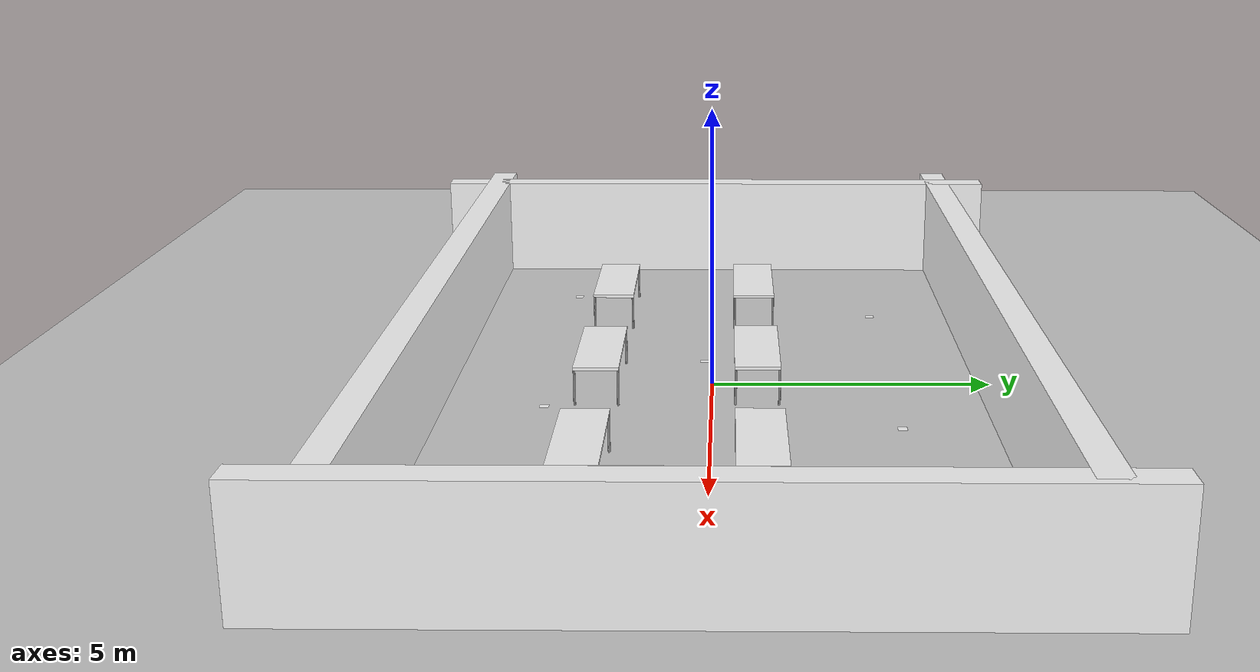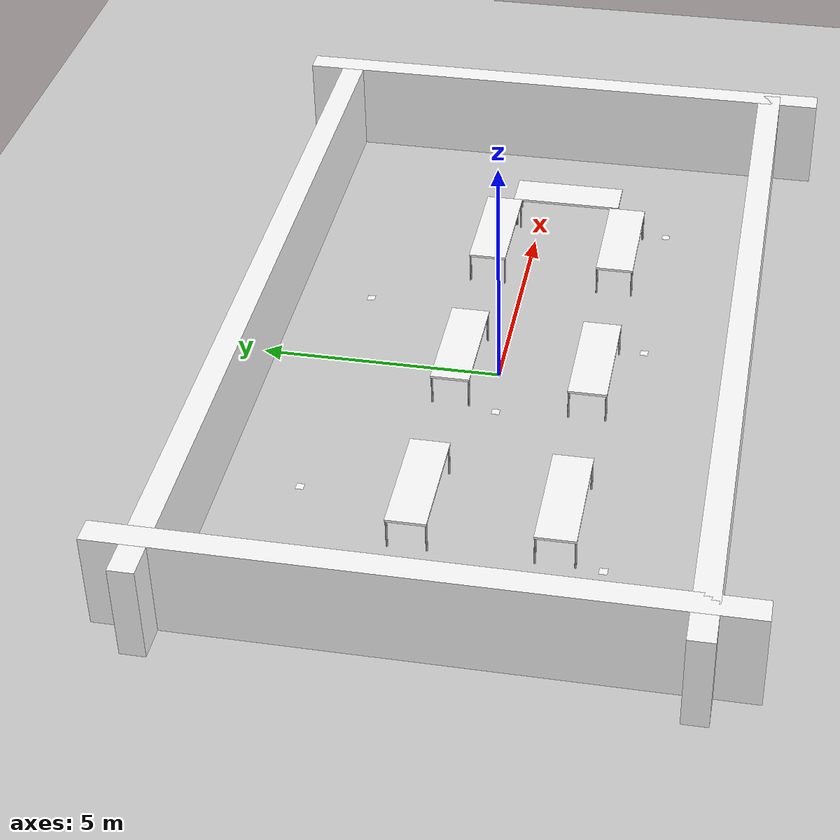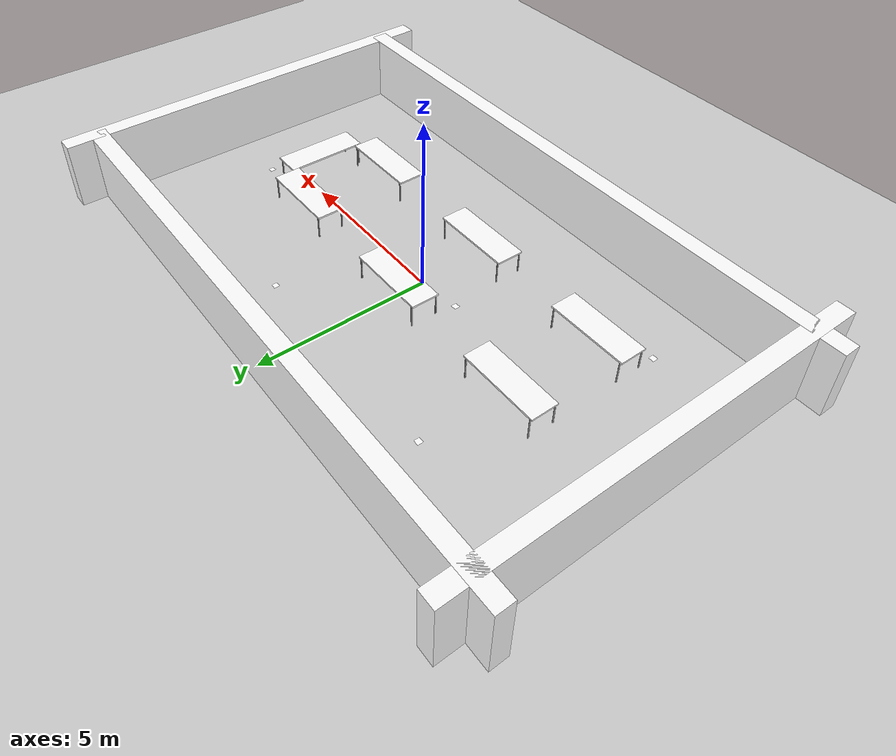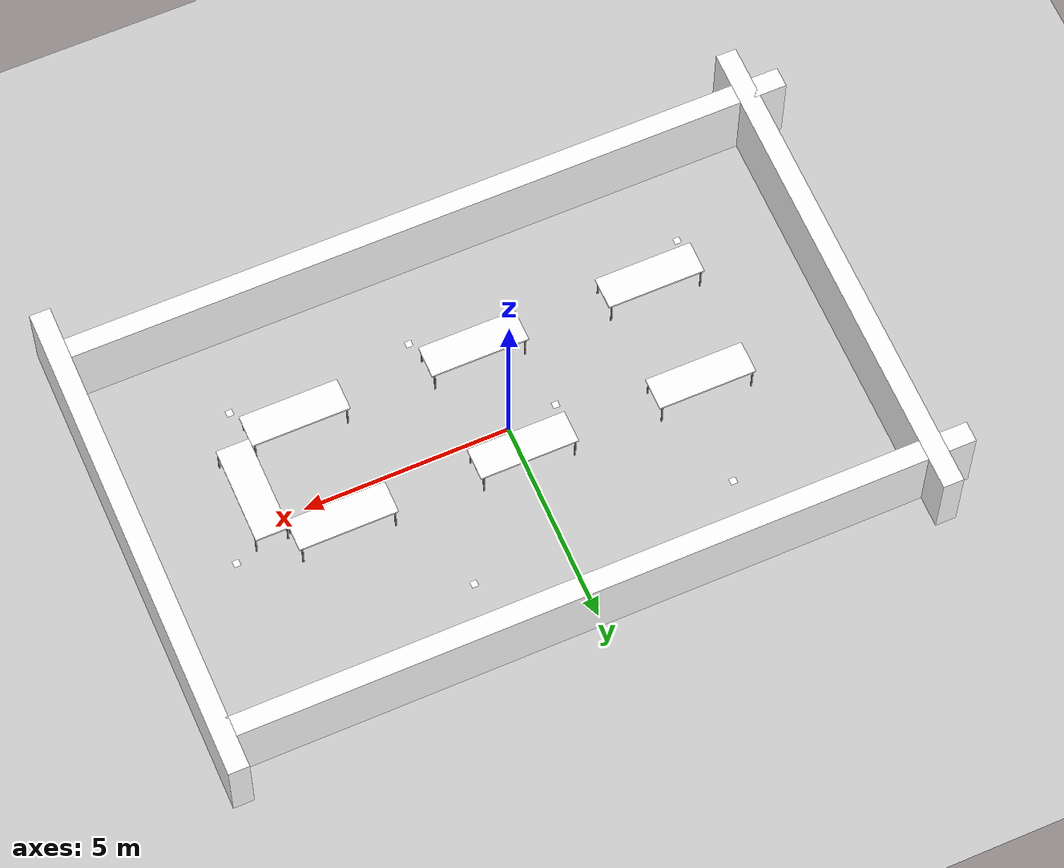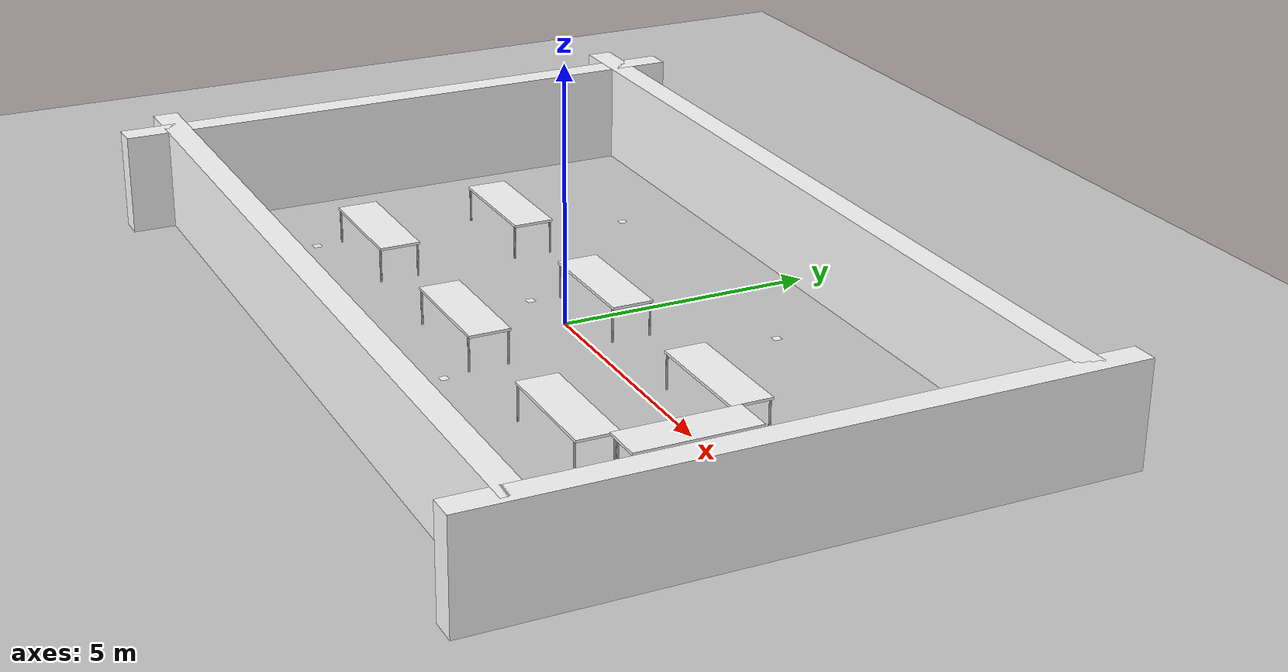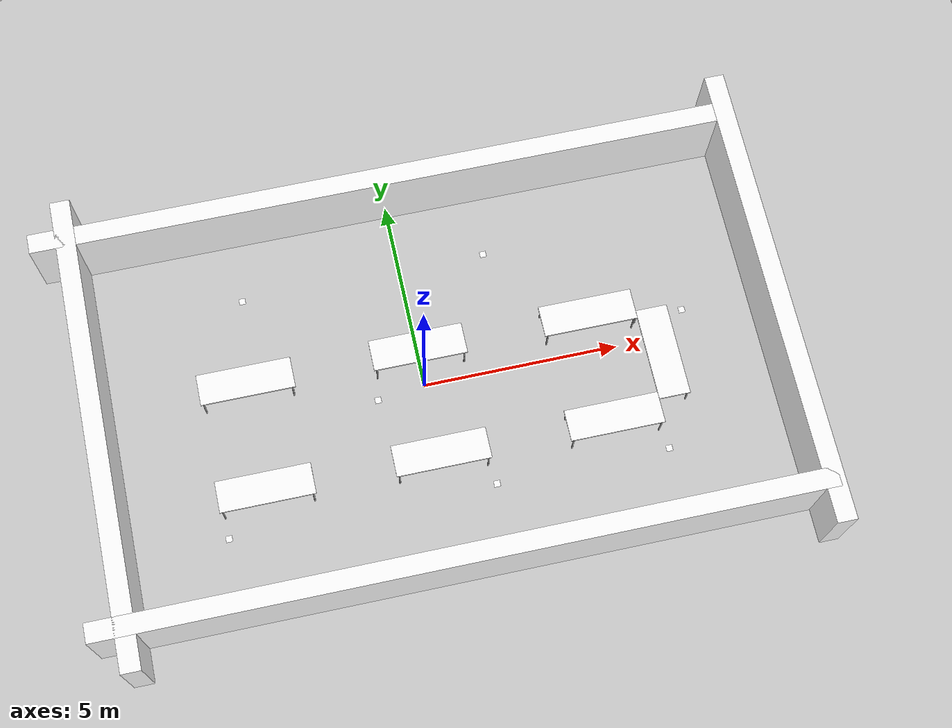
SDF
<sdf version="1.6">
 <world name="default">
  <include><uri>https://fuel.gazebosim.org/1.0/openrobotics/models/sun</uri></include>
  <include><uri>https://fuel.gazebosim.org/1.0/openrobotics/models/ground%20plane</uri></include>
  <include><uri>model://table</uri><pose>0 -2 0 0 0 0</pose><name>table1</name></include>
  <include><uri>model://table</uri><pose>4.39 -2 0 0 0 0</pose><name>table2</name></include>
  <include><uri>model://table</uri><name>table3</name><pose>4.39 0.8 0.02 0 0 0</pose></include>
  <include><uri>model://table</uri><name>table4</name><pose>0 0.8 0.02 0 0 0</pose></include>
  <include><uri>model://table</uri><name>table5</name><pose>-4.39 0.8 0.02 0 0 0</pose></include>
  <include><uri>model://table</uri><name>table6</name><pose>-4.39 -2 0.02 0 0 0</pose></include>
  <include><uri>model://table</uri><name>table7</name><pose>5.985 -0.6 0.02 0 0 1.57</pose></include>
  <include>
   <uri>model://aruco_marker_20</uri>
   <name>aruco_marker_20</name>
   <pose>-5.52 -2.9 0.02 0 0 3.14</pose>
  </include>
  <include>
   <uri>model://aruco_marker_21</uri>
   <name>aruco_marker_21</name>
   <pose>1.23 -2.9 0.02 0 0 0</pose>
  </include>
  <include>
   <uri>model://aruco_marker_22</uri>
   <name>aruco_marker_22</name>
   <pose>2.23 3.2 0.02 0 0 0</pose>
  </include>
  <include>
   <uri>model://aruco_marker_23</uri>
   <name>aruco_marker_23</name>
   <pose>-1.23 -0.15 0.02 0 0 3.14</pose>
  </include>
  <include>
   <uri>model://aruco_marker_24</uri>
   <name>aruco_marker_24</name>
   <pose>-4.13 3.2 0.02 0 0 3.14</pose>
  </include>
  <include>
   <uri>model://aruco_marker_25</uri>
   <name>aruco_marker_25</name>
   <pose>6.9 0.63 0.02 0 0 1.57079633</pose>
  </include>
  <include>
   <uri>model://aruco_marker_26</uri>
   <name>aruco_marker_26</name>
   <pose>5.65 -2.9 0.02 0 0 0</pose>
  </include>
  <model name="wall1">
   <static>true</static>
   <pose>8.885 0 1 0 0 1.57</pose>
   <link name="link">
    <visual name="visual">
     <geometry><box><size>12 0.5 2</size></box></geometry>
     <material><ambient>1 1 1 1</ambient><diffuse>1 1 1 1</diffuse></material>
    </visual>
    <collision name="collision"><geometry><box><size>12 0.5 2</size></box></geometry></collision>
   </link>
  </model>
  <model name="wall2">
   <static>true</static>
   <pose>-8.085 0 1 0 0 1.57</pose>
   <link name="link">
    <visual name="visual">
     <geometry><box><size>12 0.5 2</size></box></geometry>
     <material><ambient>1 1 1 1</ambient><diffuse>1 1 1 1</diffuse></material>
    </visual>
    <collision name="collision"><geometry><box><size>12 0.5 2</size></box></geometry></collision>
   </link>
  </model>
  <model name="wall3">
   <static>true</static>
   <pose>0 5 1 0 0 0</pose>
   <link name="link">
    <visual name="visual">
     <geometry><box><size>18 0.5 2</size></box></geometry>
     <material><ambient>1 1 1 1</ambient><diffuse>1 1 1 1</diffuse></material>
    </visual>
    <collision name="collision"><geometry><box><size>18 0.5 2</size></box></geometry></collision>
   </link>
  </model>
  <model name="wall4">
   <static>true</static>
   <pose>0 -4.9 1 0 0 0</pose>
   <link name="link">
    <visual name="visual">
     <geometry><box><size>18 0.5 2</size></box></geometry>
     <material><ambient>1 1 1 1</ambient><diffuse>1 1 1 1</diffuse></material>
    </visual>
    <collision name="collision"><geometry><box><size>18 0.5 2</size></box></geometry></collision>
   </link>
  </model>
  <plugin filename="gz-sim-physics-system" name="gz::sim::systems::Physics"/>
  <plugin filename="gz-sim-user-commands-system" name="gz::sim::systems::UserCommands"/>
  <plugin filename="gz-sim-scene-broadcaster-system" name="gz::sim::systems::SceneBroadcaster"/>
  <plugin filename="gz-sim-sensors-system" name="gz::sim::systems::Sensors"/>
 </world>
</sdf>

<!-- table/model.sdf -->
<sdf version="1.5">
  <model name="Table">
    <static>true</static>
    <link name="link">
      <collision name="surface">
        <pose>0 0 0.69 0 0 0</pose>
        <geometry>
          <box>
            <size>2.39 0.8 0.05</size>
          </box>
        </geometry>
        <surface>
          <friction>
            <ode>
              <mu>0.6</mu>
              <mu2>0.6</mu2>
            </ode>
          </friction>
        </surface>
      </collision>
      <visual name="visual1">
        <pose>0 0 0.69 0 0 0</pose>
        <geometry>
          <box>
            <size>2.39 0.8 0.05</size>
          </box>
        </geometry>
        <material>
          <ambient>1.0 1.0 1.0 1</ambient>
          <diffuse>1.0 1.0 1.0 1</diffuse>
          <!-- PBR for Ignition, material scripts for gazebo classic-->
          <pbr>
            <metal>
              <metalness>0.7</metalness>
              <roughness>0.18</roughness>
            </metal>
          </pbr>
        </material>
      </visual>
      <collision name="front_left_leg">
        <pose>1.12 0.38 0.345 0 0 0</pose>
        <geometry>
          <cylinder>
            <radius>0.02</radius>
            <length>0.69</length>
          </cylinder>
        </geometry>
      </collision>
      <visual name="front_left_leg">
        <pose>1.12 0.38 0.345 0 0 0</pose>
        <geometry>
          <cylinder>
            <radius>0.02</radius>
            <length>0.69</length>
          </cylinder>
        </geometry>
        <material>
          <diffuse>0.5 0.5 0.5</diffuse>
          <script>
            <uri>file://media/materials/scripts/gazebo.material</uri>
            <name>Gazebo/Grey</name>
          </script>
        </material>
      </visual>
      <collision name="front_right_leg">
        <pose>1.12 -0.38 0.345 0 0 0</pose>
        <geometry>
          <cylinder>
            <radius>0.02</radius>
            <length>0.69</length>
          </cylinder>
        </geometry>
      </collision>
      <visual name="front_right_leg">
        <pose>1.12 -0.38 0.345 0 0 0</pose>
        <geometry>
          <cylinder>
            <radius>0.02</radius>
            <length>0.69</length>
          </cylinder>
        </geometry>
        <material>
          <diffuse>0.5 0.5 0.5</diffuse>
          <script>
            <uri>file://media/materials/scripts/gazebo.material</uri>
            <name>Gazebo/Grey</name>
          </script>
        </material>
      </visual>
      <collision name="back_right_leg">
        <pose>-1.12 -0.38 0.345 0 0 0</pose>
        <geometry>
          <cylinder>
            <radius>0.02</radius>
            <length>0.69</length>
          </cylinder>
        </geometry>
      </collision>
      <visual name="back_right_leg">
        <pose>-1.12 -0.38 0.345 0 0 0</pose>
        <geometry>
          <cylinder>
            <radius>0.02</radius>
            <length>0.69</length>
          </cylinder>
        </geometry>
        <material>
          <diffuse>0.5 0.5 0.5</diffuse>
          <script>
            <uri>file://media/materials/scripts/gazebo.material</uri>
            <name>Gazebo/Grey</name>
          </script>
        </material>
      </visual>
      <collision name="back_left_leg">
        <pose>-1.12 0.38 0.345 0 0 0</pose>
        <geometry>
          <cylinder>
            <radius>0.02</radius>
            <length>0.69</length>
          </cylinder>
        </geometry>
      </collision>
      <visual name="back_left_leg">
        <pose>-1.12 0.38 0.345 0 0 0</pose>
        <geometry>
          <cylinder>
            <radius>0.02</radius>
            <length>0.69</length>
          </cylinder>
        </geometry>
        <material>
          <diffuse>0.5 0.5 0.5</diffuse>
          <script>
            <uri>file://media/materials/scripts/gazebo.material</uri>
            <name>Gazebo/Grey</name>
          </script>
        </material>
      </visual>
    </link>
  </model>
</sdf>

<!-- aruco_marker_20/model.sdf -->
<sdf version="1.6">
  <model name="aruco_marker_20">
    <static>true</static>

    <link name="marker_20_link">

      <visual name="marker_20_visual">
        <pose>0 0 0 0 0 0</pose>

        <geometry>
          <plane>
            <normal>0 0 1</normal>
            <size>0.162 0.162</size>
          </plane>
        </geometry>

        <material>
          <ambient>1 1 1 1</ambient>
          <diffuse>1 1 1 1</diffuse>
          <specular>0 0 0 1</specular>

          <pbr>
            <metal>
              <albedo_map>model://aruco_marker_20/textures/aruco_marker_20.png</albedo_map>
              <roughness>1.0</roughness>
              <metalness>0.0</metalness>
            </metal>
          </pbr>
        </material>

        <cast_shadows>false</cast_shadows>
      </visual>
    </link>
  </model>
</sdf>

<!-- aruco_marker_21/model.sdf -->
<sdf version="1.6">
  <model name="aruco_marker_21">
    <static>true</static>

    <link name="marker_21_link">

      <visual name="marker_21_visual">
        <pose>0 0 0 0 0 0</pose>

        <geometry>
          <plane>
            <normal>0 0 1</normal>
            <size>0.162 0.162</size>
          </plane>
        </geometry>

        <material>
          <ambient>1 1 1 1</ambient>
          <diffuse>1 1 1 1</diffuse>
          <specular>0 0 0 1</specular>

          <pbr>
            <metal>
              <albedo_map>model://aruco_marker_21/textures/aruco_marker_21.png</albedo_map>
              <roughness>1.0</roughness>
              <metalness>0.0</metalness>
            </metal>
          </pbr>
        </material>

        <cast_shadows>false</cast_shadows>
      </visual>
    </link>
  </model>
</sdf>

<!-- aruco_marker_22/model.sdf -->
<sdf version="1.6">
  <model name="aruco_marker_22">
    <static>true</static>

    <link name="marker_22_link">

      <visual name="marker_22_visual">
        <pose>0 0 0 0 0 0</pose>

        <geometry>
          <plane>
            <normal>0 0 1</normal>
            <size>0.162 0.162</size>
          </plane>
        </geometry>

        <material>
          <ambient>1 1 1 1</ambient>
          <diffuse>1 1 1 1</diffuse>
          <specular>0 0 0 1</specular>

          <pbr>
            <metal>
              <albedo_map>model://aruco_marker_22/textures/aruco_marker_22.png</albedo_map>
              <roughness>1.0</roughness>
              <metalness>0.0</metalness>
            </metal>
          </pbr>
        </material>

        <cast_shadows>false</cast_shadows>
      </visual>
    </link>
  </model>
</sdf>

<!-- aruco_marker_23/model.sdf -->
<sdf version="1.6">
  <model name="aruco_marker_23">
    <static>true</static>

    <link name="marker_23_link">

      <visual name="marker_23_visual">
        <pose>0 0 0 0 0 0</pose>

        <geometry>
          <plane>
            <normal>0 0 1</normal>
            <size>0.162 0.162</size>
          </plane>
        </geometry>

        <material>
          <ambient>1 1 1 1</ambient>
          <diffuse>1 1 1 1</diffuse>
          <specular>0 0 0 1</specular>

          <pbr>
            <metal>
              <albedo_map>model://aruco_marker_23/textures/aruco_marker_23.png</albedo_map>
              <roughness>1.0</roughness>
              <metalness>0.0</metalness>
            </metal>
          </pbr>
        </material>

        <cast_shadows>false</cast_shadows>
      </visual>
    </link>
  </model>
</sdf>

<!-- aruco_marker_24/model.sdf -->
<sdf version="1.6">
  <model name="aruco_marker_24">
    <static>true</static>

    <link name="marker_24_link">

      <visual name="marker_24_visual">
        <pose>0 0 0 0 0 0</pose>

        <geometry>
          <plane>
            <normal>0 0 1</normal>
            <size>0.162 0.162</size>
          </plane>
        </geometry>

        <material>
          <ambient>1 1 1 1</ambient>
          <diffuse>1 1 1 1</diffuse>
          <specular>0 0 0 1</specular>

          <pbr>
            <metal>
              <albedo_map>model://aruco_marker_24/textures/aruco_marker_24.png</albedo_map>
              <roughness>1.0</roughness>
              <metalness>0.0</metalness>
            </metal>
          </pbr>
        </material>

        <cast_shadows>false</cast_shadows>
      </visual>
    </link>
  </model>
</sdf>

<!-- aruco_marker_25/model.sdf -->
<sdf version="1.6">
  <model name="aruco_marker_25">
    <static>true</static>

    <link name="marker_25_link">

      <visual name="marker_25_visual">
        <pose>0 0 0 0 0 0</pose>

        <geometry>
          <plane>
            <normal>0 0 1</normal>
            <size>0.162 0.162</size>
          </plane>
        </geometry>

        <material>
          <ambient>1 1 1 1</ambient>
          <diffuse>1 1 1 1</diffuse>
          <specular>0 0 0 1</specular>

          <pbr>
            <metal>
              <albedo_map>model://aruco_marker_25/textures/aruco_marker_25.png</albedo_map>
              <roughness>1.0</roughness>
              <metalness>0.0</metalness>
            </metal>
          </pbr>
        </material>

        <cast_shadows>false</cast_shadows>
      </visual>
    </link>
  </model>
</sdf>

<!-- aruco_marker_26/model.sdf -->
<sdf version="1.6">
  <model name="aruco_marker_26">
    <static>true</static>

    <link name="marker_26_link">

      <visual name="marker_26_visual">
        <pose>0 0 0 0 0 0</pose>

        <geometry>
          <plane>
            <normal>0 0 1</normal>
            <size>0.162 0.162</size>
          </plane>
        </geometry>

        <material>
          <ambient>1 1 1 1</ambient>
          <diffuse>1 1 1 1</diffuse>
          <specular>0 0 0 1</specular>

          <pbr>
            <metal>
              <albedo_map>model://aruco_marker_26/textures/aruco_marker_26.png</albedo_map>
              <roughness>1.0</roughness>
              <metalness>0.0</metalness>
            </metal>
          </pbr>
        </material>

        <cast_shadows>false</cast_shadows>
      </visual>
    </link>
  </model>
</sdf>
